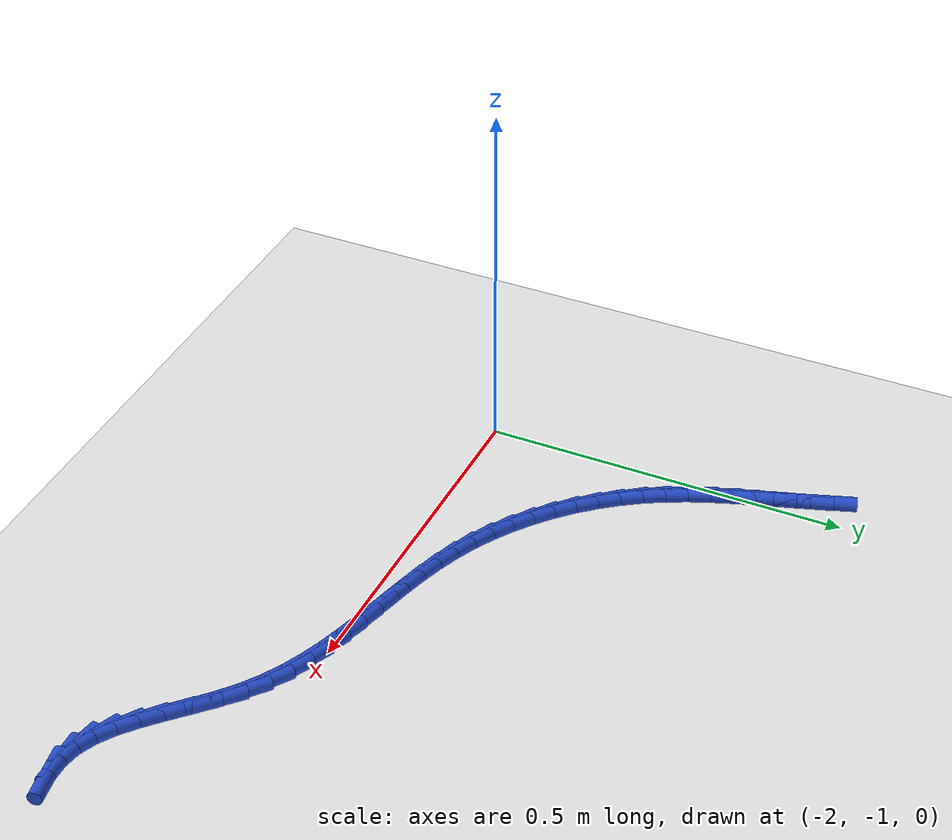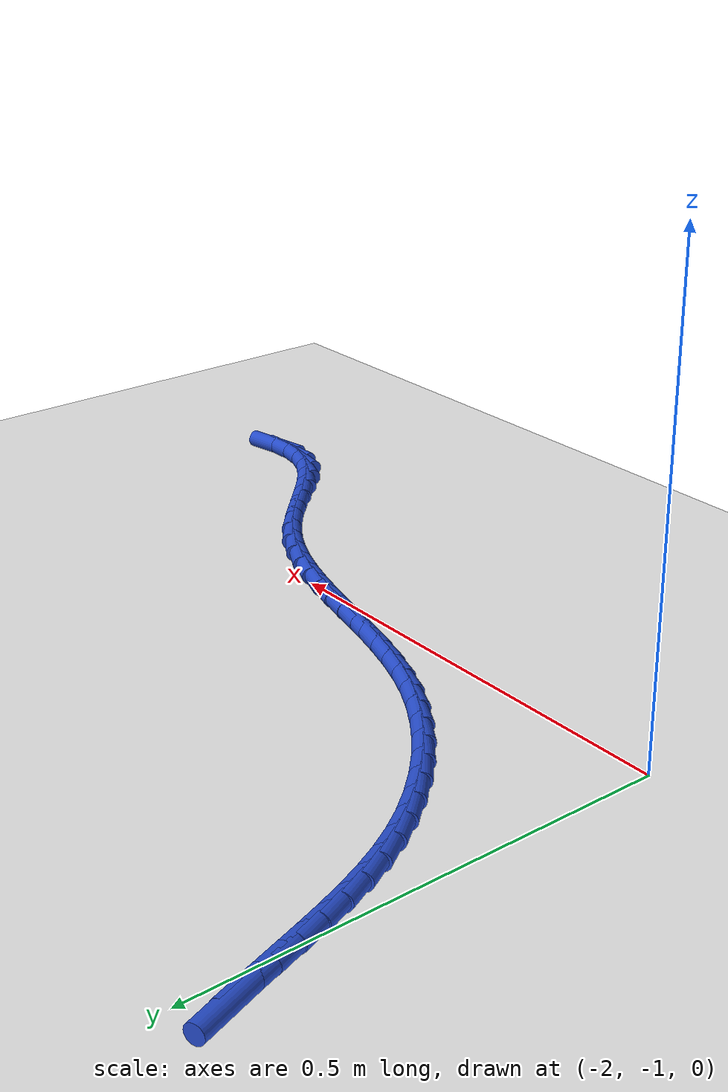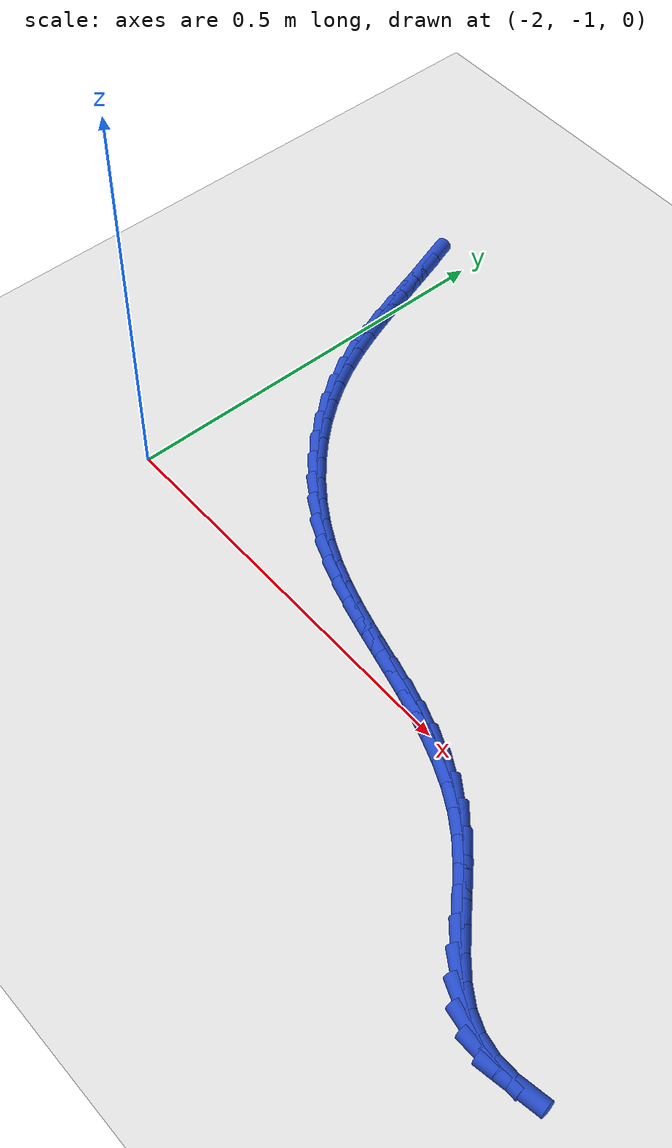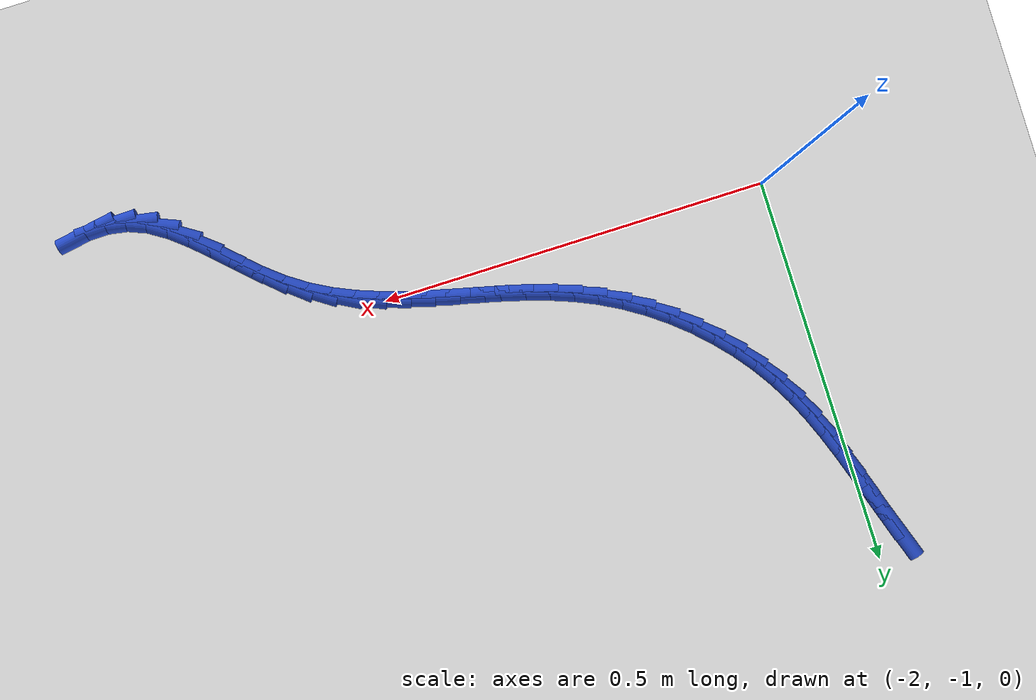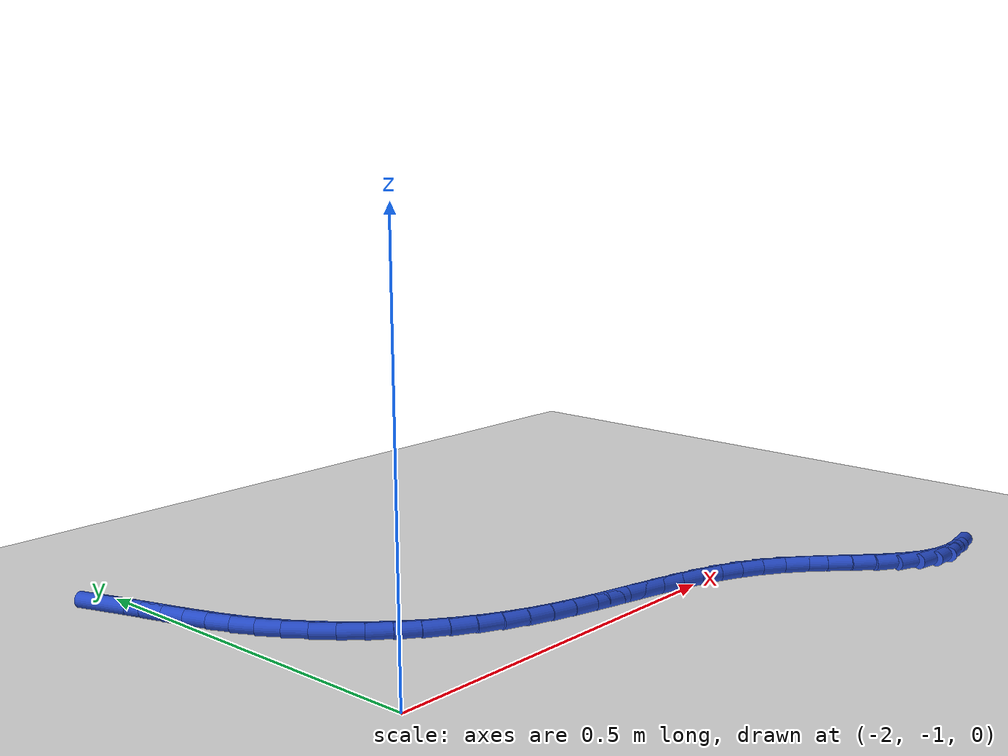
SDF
<sdf version="1.6">
 <world name="default">
  <model name="ground_plane">
   <static>1</static>
   <link name="link">
    <collision name="collision">
     <geometry><plane><normal>0 0 1</normal><size>100 100</size></plane></geometry>
     <surface><friction><ode><mu>100</mu><mu2>50</mu2></ode></friction></surface>
    </collision>
    <visual name="visual">
     <cast_shadows>0</cast_shadows>
     <geometry><plane><normal>0 0 1</normal><size>100 100</size></plane></geometry>
     <material>
      <script><uri>file://media/materials/scripts/gazebo.material</uri><name>Gazebo/WhiteGlow</name></script>
     </material>
    </visual>
   </link>
  </model>
  <model name="line">
   <link name="link_134">
    <pose>-2.0309106645254564 -0.5296036187904007 0.01 0 1.57 -1.2397022820391388</pose>
    <collision name="collision">
     <geometry><cylinder><radius>0.01</radius><length>0.08</length></cylinder></geometry>
    </collision>
    <visual name="visual">
     <material>
      <script><name>Gazebo/Blue</name><uri>file://media/materials/scripts/gazebo.material</uri></script>
     </material>
     <geometry><cylinder><radius>0.01</radius><length>0.08</length></cylinder></geometry>
    </visual>
   </link>
   <link name="link_135">
    <pose>-2.020911489317567 -0.5586923207507694 0.01 0 1.57 -1.2549551059196937</pose>
    <collision name="collision">
     <geometry><cylinder><radius>0.01</radius><length>0.08</length></cylinder></geometry>
    </collision>
    <visual name="visual">
     <material>
      <script><name>Gazebo/Blue</name><uri>file://media/materials/scripts/gazebo.material</uri></script>
     </material>
     <geometry><cylinder><radius>0.01</radius><length>0.08</length></cylinder></geometry>
    </visual>
   </link>
   <link name="link_136">
    <pose>-2.0113435929799843 -0.5879716197840174 0.01 0 1.57 -1.2565017885527103</pose>
    <collision name="collision">
     <geometry><cylinder><radius>0.01</radius><length>0.08</length></cylinder></geometry>
    </collision>
    <visual name="visual">
     <material>
      <script><name>Gazebo/Blue</name><uri>file://media/materials/scripts/gazebo.material</uri></script>
     </material>
     <geometry><cylinder><radius>0.01</radius><length>0.08</length></cylinder></geometry>
    </visual>
   </link>
   <link name="link_137">
    <pose>-2.001820761127579 -0.6172663982115498 0.01 0 1.57 -1.24434951905093</pose>
    <collision name="collision">
     <geometry><cylinder><radius>0.01</radius><length>0.08</length></cylinder></geometry>
    </collision>
    <visual name="visual">
     <material>
      <script><name>Gazebo/Blue</name><uri>file://media/materials/scripts/gazebo.material</uri></script>
     </material>
     <geometry><cylinder><radius>0.01</radius><length>0.08</length></cylinder></geometry>
    </visual>
   </link>
   <link name="link_138">
    <pose>-1.9919567793752246 -0.646401538354771 0.01 0 1.57 -1.218396775767209</pose>
    <collision name="collision">
     <geometry><cylinder><radius>0.01</radius><length>0.08</length></cylinder></geometry>
    </collision>
    <visual name="visual">
     <material>
      <script><name>Gazebo/Blue</name><uri>file://media/materials/scripts/gazebo.material</uri></script>
     </material>
     <geometry><cylinder><radius>0.01</radius><length>0.08</length></cylinder></geometry>
    </visual>
   </link>
   <link name="link_139">
    <pose>-1.9813654333377915 -0.675201922535085 0.01 0 1.57 -1.1785012556043728</pose>
    <collision name="collision">
     <geometry><cylinder><radius>0.01</radius><length>0.08</length></cylinder></geometry>
    </collision>
    <visual name="visual">
     <material>
      <script><name>Gazebo/Blue</name><uri>file://media/materials/scripts/gazebo.material</uri></script>
     </material>
     <geometry><cylinder><radius>0.01</radius><length>0.08</length></cylinder></geometry>
    </visual>
   </link>
   <link name="link_140">
    <pose>-1.9696605086301509 -0.7034924330738969 0.01 0 1.57 -1.1246295135102233</pose>
    <collision name="collision">
     <geometry><cylinder><radius>0.01</radius><length>0.08</length></cylinder></geometry>
    </collision>
    <visual name="visual">
     <material>
      <script><name>Gazebo/Blue</name><uri>file://media/materials/scripts/gazebo.material</uri></script>
     </material>
     <geometry><cylinder><radius>0.01</radius><length>0.08</length></cylinder></geometry>
    </visual>
   </link>
   <link name="link_141">
    <pose>-1.956455790867175 -0.7310979522926095 0.01 0 1.57 -1.0572884690969546</pose>
    <collision name="collision">
     <geometry><cylinder><radius>0.01</radius><length>0.08</length></cylinder></geometry>
    </collision>
    <visual name="visual">
     <material>
      <script><name>Gazebo/Blue</name><uri>file://media/materials/scripts/gazebo.material</uri></script>
     </material>
     <geometry><cylinder><radius>0.01</radius><length>0.08</length></cylinder></geometry>
    </visual>
   </link>
   <link name="link_142">
    <pose>-1.9413718139723992 -0.7578438634277562 0.01 0 1.57 -0.9838527828997068</pose>
    <collision name="collision">
     <geometry><cylinder><radius>0.01</radius><length>0.08</length></cylinder></geometry>
    </collision>
    <visual name="visual">
     <material>
      <script><name>Gazebo/Blue</name><uri>file://media/materials/scripts/gazebo.material</uri></script>
     </material>
     <geometry><cylinder><radius>0.01</radius><length>0.08</length></cylinder></geometry>
    </visual>
   </link>
   <link name="link_143">
    <pose>-1.9242586612507333 -0.783572588764251 0.01 0 1.57 -0.9123438277449851</pose>
    <collision name="collision">
     <geometry><cylinder><radius>0.01</radius><length>0.08</length></cylinder></geometry>
    </collision>
    <visual name="visual">
     <material>
      <script><name>Gazebo/Blue</name><uri>file://media/materials/scripts/gazebo.material</uri></script>
     </material>
     <geometry><cylinder><radius>0.01</radius><length>0.08</length></cylinder></geometry>
    </visual>
   </link>
   <link name="link_144">
    <pose>-1.9052469147205797 -0.8081473715150446 0.01 0 1.57 -0.842606290064657</pose>
    <collision name="collision">
     <geometry><cylinder><radius>0.01</radius><length>0.08</length></cylinder></geometry>
    </collision>
    <visual name="visual">
     <material>
      <script><name>Gazebo/Blue</name><uri>file://media/materials/scripts/gazebo.material</uri></script>
     </material>
     <geometry><cylinder><radius>0.01</radius><length>0.08</length></cylinder></geometry>
    </visual>
   </link>
   <link name="link_145">
    <pose>-1.8844842230958425 -0.8314327217239899 0.01 0 1.57 -0.7739674772984462</pose>
    <collision name="collision">
     <geometry><cylinder><radius>0.01</radius><length>0.08</length></cylinder></geometry>
    </collision>
    <visual name="visual">
     <material>
      <script><name>Gazebo/Blue</name><uri>file://media/materials/scripts/gazebo.material</uri></script>
     </material>
     <geometry><cylinder><radius>0.01</radius><length>0.08</length></cylinder></geometry>
    </visual>
   </link>
   <link name="link_146">
    <pose>-1.8621182350904266 -0.8532931494349416 0.01 0 1.57 -0.7057508587952691</pose>
    <collision name="collision">
     <geometry><cylinder><radius>0.01</radius><length>0.08</length></cylinder></geometry>
    </collision>
    <visual name="visual">
     <material>
      <script><name>Gazebo/Blue</name><uri>file://media/materials/scripts/gazebo.material</uri></script>
     </material>
     <geometry><cylinder><radius>0.01</radius><length>0.08</length></cylinder></geometry>
    </visual>
   </link>
   <link name="link_147">
    <pose>-1.8382965994182354 -0.8735931646917542 0.01 0 1.57 -0.6372807128933459</pose>
    <collision name="collision">
     <geometry><cylinder><radius>0.01</radius><length>0.08</length></cylinder></geometry>
    </collision>
    <visual name="visual">
     <material>
      <script><name>Gazebo/Blue</name><uri>file://media/materials/scripts/gazebo.material</uri></script>
     </material>
     <geometry><cylinder><radius>0.01</radius><length>0.08</length></cylinder></geometry>
    </visual>
   </link>
   <link name="link_148">
    <pose>-1.8131669647931725 -0.8921972775382818 0.01 0 1.57 -0.5678852242176151</pose>
    <collision name="collision">
     <geometry><cylinder><radius>0.01</radius><length>0.08</length></cylinder></geometry>
    </collision>
    <visual name="visual">
     <material>
      <script><name>Gazebo/Blue</name><uri>file://media/materials/scripts/gazebo.material</uri></script>
     </material>
     <geometry><cylinder><radius>0.01</radius><length>0.08</length></cylinder></geometry>
    </visual>
   </link>
   <link name="link_149">
    <pose>-1.7868769799291429 -0.9089699980183779 0.01 0 1.57 -0.4969007213134973</pose>
    <collision name="collision">
     <geometry><cylinder><radius>0.01</radius><length>0.08</length></cylinder></geometry>
    </collision>
    <visual name="visual">
     <material>
      <script><name>Gazebo/Blue</name><uri>file://media/materials/scripts/gazebo.material</uri></script>
     </material>
     <geometry><cylinder><radius>0.01</radius><length>0.08</length></cylinder></geometry>
    </visual>
   </link>
   <link name="link_150">
    <pose>-1.75957429354005 -0.9237758361758973 0.01 0 1.57 -0.4241081914545061</pose>
    <collision name="collision">
     <geometry><cylinder><radius>0.01</radius><length>0.08</length></cylinder></geometry>
    </collision>
    <visual name="visual">
     <material>
      <script><name>Gazebo/Blue</name><uri>file://media/materials/scripts/gazebo.material</uri></script>
     </material>
     <geometry><cylinder><radius>0.01</radius><length>0.08</length></cylinder></geometry>
    </visual>
   </link>
   <link name="link_151">
    <pose>-1.7314069741485734 -0.9364936373899299 0.01 0 1.57 -0.35759032777573296</pose>
    <collision name="collision">
     <geometry><cylinder><radius>0.01</radius><length>0.08</length></cylinder></geometry>
    </collision>
    <visual name="visual">
     <material>
      <script><name>Gazebo/Blue</name><uri>file://media/materials/scripts/gazebo.material</uri></script>
     </material>
     <geometry><cylinder><radius>0.01</radius><length>0.08</length></cylinder></geometry>
    </visual>
   </link>
   <link name="link_152">
    <pose>-1.7025313164932587 -0.9472831500817064 0.01 0 1.57 -0.30546404987784503</pose>
    <collision name="collision">
     <geometry><cylinder><radius>0.01</radius><length>0.08</length></cylinder></geometry>
    </collision>
    <visual name="visual">
     <material>
      <script><name>Gazebo/Blue</name><uri>file://media/materials/scripts/gazebo.material</uri></script>
     </material>
     <geometry><cylinder><radius>0.01</radius><length>0.08</length></cylinder></geometry>
    </visual>
   </link>
   <link name="link_153">
    <pose>-1.6731111180145555 -0.956560319667926 0.01 0 1.57 -0.2682092652600013</pose>
    <collision name="collision">
     <geometry><cylinder><radius>0.01</radius><length>0.08</length></cylinder></geometry>
    </collision>
    <visual name="visual">
     <material>
      <script><name>Gazebo/Blue</name><uri>file://media/materials/scripts/gazebo.material</uri></script>
     </material>
     <geometry><cylinder><radius>0.01</radius><length>0.08</length></cylinder></geometry>
    </visual>
   </link>
   <link name="link_154">
    <pose>-1.6433104508743246 -0.9647504725590657 0.01 0 1.57 -0.2457371996302543</pose>
    <collision name="collision">
     <geometry><cylinder><radius>0.01</radius><length>0.08</length></cylinder></geometry>
    </collision>
    <visual name="visual">
     <material>
      <script><name>Gazebo/Blue</name><uri>file://media/materials/scripts/gazebo.material</uri></script>
     </material>
     <geometry><cylinder><radius>0.01</radius><length>0.08</length></cylinder></geometry>
    </visual>
   </link>
   <link name="link_155">
    <pose>-1.6132933872344244 -0.9722789351656023 0.01 0 1.57 -0.23791602665565031</pose>
    <collision name="collision">
     <geometry><cylinder><radius>0.01</radius><length>0.08</length></cylinder></geometry>
    </collision>
    <visual name="visual">
     <material>
      <script><name>Gazebo/Blue</name><uri>file://media/materials/scripts/gazebo.material</uri></script>
     </material>
     <geometry><cylinder><radius>0.01</radius><length>0.08</length></cylinder></geometry>
    </visual>
   </link>
   <link name="link_156">
    <pose>-1.5832239992567156 -0.9795710338980134 0.01 0 1.57 -0.24471635339154058</pose>
    <collision name="collision">
     <geometry><cylinder><radius>0.01</radius><length>0.08</length></cylinder></geometry>
    </collision>
    <visual name="visual">
     <material>
      <script><name>Gazebo/Blue</name><uri>file://media/materials/scripts/gazebo.material</uri></script>
     </material>
     <geometry><cylinder><radius>0.01</radius><length>0.08</length></cylinder></geometry>
    </visual>
   </link>
   <link name="link_157">
    <pose>-1.5532663591030569 -0.9870520951667766 0.01 0 1.57 -0.26626171848655666</pose>
    <collision name="collision">
     <geometry><cylinder><radius>0.01</radius><length>0.08</length></cylinder></geometry>
    </collision>
    <visual name="visual">
     <material>
      <script><name>Gazebo/Blue</name><uri>file://media/materials/scripts/gazebo.material</uri></script>
     </material>
     <geometry><cylinder><radius>0.01</radius><length>0.08</length></cylinder></geometry>
    </visual>
   </link>
   <link name="link_158">
    <pose>-1.5235845389353093 -0.9951474453823687 0.01 0 1.57 -0.3027871342576822</pose>
    <collision name="collision">
     <geometry><cylinder><radius>0.01</radius><length>0.08</length></cylinder></geometry>
    </collision>
    <visual name="visual">
     <material>
      <script><name>Gazebo/Blue</name><uri>file://media/materials/scripts/gazebo.material</uri></script>
     </material>
     <geometry><cylinder><radius>0.01</radius><length>0.08</length></cylinder></geometry>
    </visual>
   </link>
   <link name="link_159">
    <pose>-1.4943426109153326 -1.004282410955267 0.01 0 1.57 -0.3544984933311618</pose>
    <collision name="collision">
     <geometry><cylinder><radius>0.01</radius><length>0.08</length></cylinder></geometry>
    </collision>
    <visual name="visual">
     <material>
      <script><name>Gazebo/Blue</name><uri>file://media/materials/scripts/gazebo.material</uri></script>
     </material>
     <geometry><cylinder><radius>0.01</radius><length>0.08</length></cylinder></geometry>
    </visual>
   </link>
   <link name="link_160">
    <pose>-1.4657046472049857 -1.0148823182959488 0.01 0 1.57 -0.4213223966272554</pose>
    <collision name="collision">
     <geometry><cylinder><radius>0.01</radius><length>0.08</length></cylinder></geometry>
    </collision>
    <visual name="visual">
     <material>
      <script><name>Gazebo/Blue</name><uri>file://media/materials/scripts/gazebo.material</uri></script>
     </material>
     <geometry><cylinder><radius>0.01</radius><length>0.08</length></cylinder></geometry>
    </visual>
   </link>
   <link name="link_161">
    <pose>-1.437834719966129 -1.0273724938148914 0.01 0 1.57 -0.5025572975469658</pose>
    <collision name="collision">
     <geometry><cylinder><radius>0.01</radius><length>0.08</length></cylinder></geometry>
    </collision>
    <visual name="visual">
     <material>
      <script><name>Gazebo/Blue</name><uri>file://media/materials/scripts/gazebo.material</uri></script>
     </material>
     <geometry><cylinder><radius>0.01</radius><length>0.08</length></cylinder></geometry>
    </visual>
   </link>
   <link name="link_162">
    <pose>-1.410896901360621 -1.0421782639225725 0.01 0 1.57 -0.5964983339683667</pose>
    <collision name="collision">
     <geometry><cylinder><radius>0.01</radius><length>0.08</length></cylinder></geometry>
    </collision>
    <visual name="visual">
     <material>
      <script><name>Gazebo/Blue</name><uri>file://media/materials/scripts/gazebo.material</uri></script>
     </material>
     <geometry><cylinder><radius>0.01</radius><length>0.08</length></cylinder></geometry>
    </visual>
   </link>
   <link name="link_163">
    <pose>-1.3850552635503233 -1.0597249550294685 0.01 0 1.57 -0.6913119566912995</pose>
    <collision name="collision">
     <geometry><cylinder><radius>0.01</radius><length>0.08</length></cylinder></geometry>
    </collision>
    <visual name="visual">
     <material>
      <script><name>Gazebo/Blue</name><uri>file://media/materials/scripts/gazebo.material</uri></script>
     </material>
     <geometry><cylinder><radius>0.01</radius><length>0.08</length></cylinder></geometry>
    </visual>
   </link>
   <link name="link_164">
    <pose>-1.3603878573948267 -1.0801383222534555 0.01 0 1.57 -0.751042908049638</pose>
    <collision name="collision">
     <geometry><cylinder><radius>0.01</radius><length>0.08</length></cylinder></geometry>
    </collision>
    <visual name="visual">
     <material>
      <script><name>Gazebo/Blue</name><uri>file://media/materials/scripts/gazebo.material</uri></script>
     </material>
     <geometry><cylinder><radius>0.01</radius><length>0.08</length></cylinder></geometry>
    </visual>
   </link>
   <link name="link_165">
    <pose>-1.3366224914828484 -1.1023243934234428 0.01 0 1.57 -0.7707586870617414</pose>
    <collision name="collision">
     <geometry><cylinder><radius>0.01</radius><length>0.08</length></cylinder></geometry>
    </collision>
    <visual name="visual">
     <material>
      <script><name>Gazebo/Blue</name><uri>file://media/materials/scripts/gazebo.material</uri></script>
     </material>
     <geometry><cylinder><radius>0.01</radius><length>0.08</length></cylinder></geometry>
    </visual>
   </link>
   <link name="link_166">
    <pose>-1.3133978471262275 -1.124878808443067 0.01 0 1.57 -0.7511494852771167</pose>
    <collision name="collision">
     <geometry><cylinder><radius>0.01</radius><length>0.08</length></cylinder></geometry>
    </collision>
    <visual name="visual">
     <material>
      <script><name>Gazebo/Blue</name><uri>file://media/materials/scripts/gazebo.material</uri></script>
     </material>
     <geometry><cylinder><radius>0.01</radius><length>0.08</length></cylinder></geometry>
    </visual>
   </link>
   <link name="link_167">
    <pose>-1.2903526056187133 -1.1463972071529576 0.01 0 1.57 -0.6876345333976479</pose>
    <collision name="collision">
     <geometry><cylinder><radius>0.01</radius><length>0.08</length></cylinder></geometry>
    </collision>
    <visual name="visual">
     <material>
      <script><name>Gazebo/Blue</name><uri>file://media/materials/scripts/gazebo.material</uri></script>
     </material>
     <geometry><cylinder><radius>0.01</radius><length>0.08</length></cylinder></geometry>
    </visual>
   </link>
   <link name="link_168">
    <pose>-1.2671254482540526 -1.1654752293937451 0.01 0 1.57 -0.5699168593639998</pose>
    <collision name="collision">
     <geometry><cylinder><radius>0.01</radius><length>0.08</length></cylinder></geometry>
    </collision>
    <visual name="visual">
     <material>
      <script><name>Gazebo/Blue</name><uri>file://media/materials/scripts/gazebo.material</uri></script>
     </material>
     <geometry><cylinder><radius>0.01</radius><length>0.08</length></cylinder></geometry>
    </visual>
   </link>
   <link name="link_169">
    <pose>-1.2433550563259932 -1.1807085150060603 0.01 0 1.57 -0.3858373517759939</pose>
    <collision name="collision">
     <geometry><cylinder><radius>0.01</radius><length>0.08</length></cylinder></geometry>
    </collision>
    <visual name="visual">
     <material>
      <script><name>Gazebo/Blue</name><uri>file://media/materials/scripts/gazebo.material</uri></script>
     </material>
     <geometry><cylinder><radius>0.01</radius><length>0.08</length></cylinder></geometry>
    </visual>
   </link>
   <link name="link_170">
    <pose>-1.2186877076184777 -1.1907283230853891 0.01 0 1.57 -0.1695483871572276</pose>
    <collision name="collision">
     <geometry><cylinder><radius>0.01</radius><length>0.08</length></cylinder></geometry>
    </collision>
    <visual name="visual">
     <material>
      <script><name>Gazebo/Blue</name><uri>file://media/materials/scripts/gazebo.material</uri></script>
     </material>
     <geometry><cylinder><radius>0.01</radius><length>0.08</length></cylinder></geometry>
    </visual>
   </link>
   <link name="link_171">
    <pose>-1.192975306849311 -1.1951300788057913 0.01 0 1.57 0.021306932061445415</pose>
    <collision name="collision">
     <geometry><cylinder><radius>0.01</radius><length>0.08</length></cylinder></geometry>
    </collision>
    <visual name="visual">
     <material>
      <script><name>Gazebo/Blue</name><uri>file://media/materials/scripts/gazebo.material</uri></script>
     </material>
     <geometry><cylinder><radius>0.01</radius><length>0.08</length></cylinder></geometry>
    </visual>
   </link>
   <link name="link_172">
    <pose>-1.1662941803155225 -1.19456149981063 0.01 0 1.57 0.173757162339846</pose>
    <collision name="collision">
     <geometry><cylinder><radius>0.01</radius><length>0.08</length></cylinder></geometry>
    </collision>
    <visual name="visual">
     <material>
      <script><name>Gazebo/Blue</name><uri>file://media/materials/scripts/gazebo.material</uri></script>
     </material>
     <geometry><cylinder><radius>0.01</radius><length>0.08</length></cylinder></geometry>
    </visual>
   </link>
  </model>
 </world>
</sdf>
